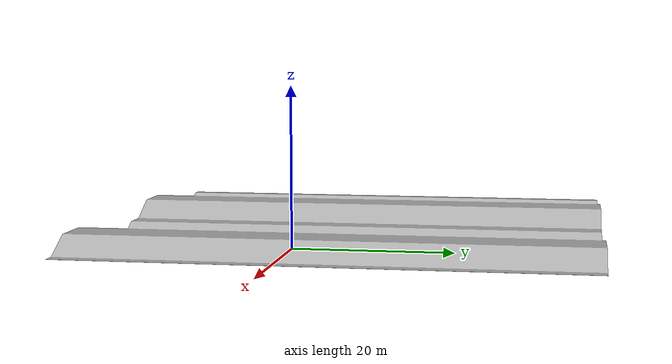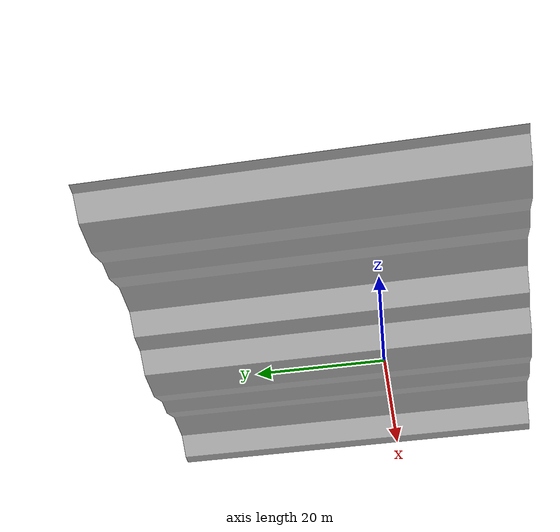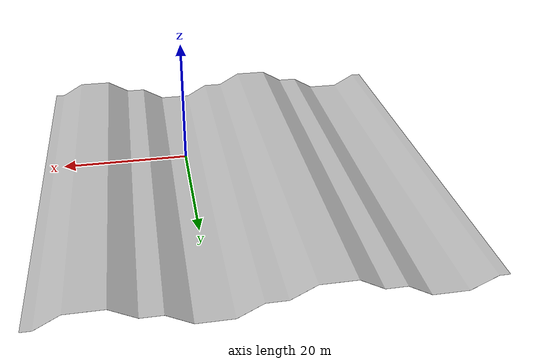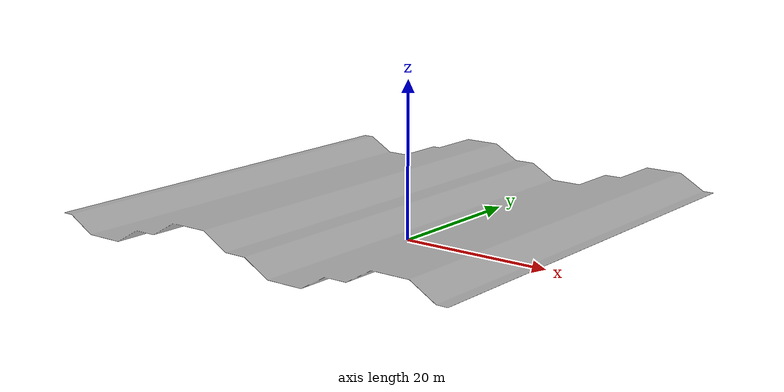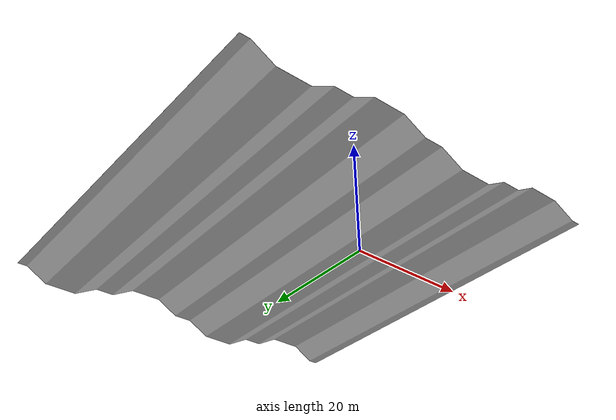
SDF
<?xml version="1.0" ?>
<sdf version="1.5">
  <model name="terrain_flat">
    <pose>-37.5 -22.5 0 1.57 0 0</pose>
    <static>true</static>
    <link name="link">
      <collision name="collision">
        <geometry>
          <mesh>
            <uri>model://terrain_flat/meshes/terrain_flat2_yconst.stl</uri>
          </mesh>
        </geometry>
      </collision>
      <visual name="visual">
        <cast_shadows>false</cast_shadows>
        <geometry>
          <mesh>
            <uri>model://terrain_flat/meshes/terrain_flat2_yconst.stl</uri>
          </mesh>
        </geometry>
        <material>
          <script>
            <uri>model://terrain_flat/materials/scripts</uri>
            <uri>model://terrain_flat/materials/textures</uri>
            <name>vrc/forest</name>
          </script>
        </material>
      </visual>
    </link>
  </model>
</sdf>
